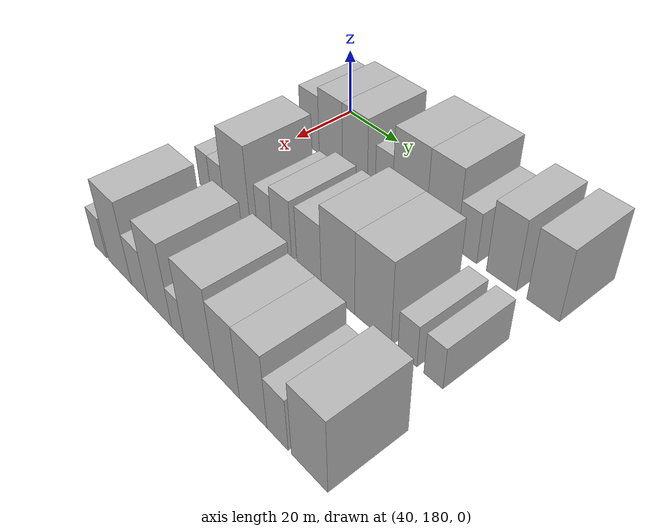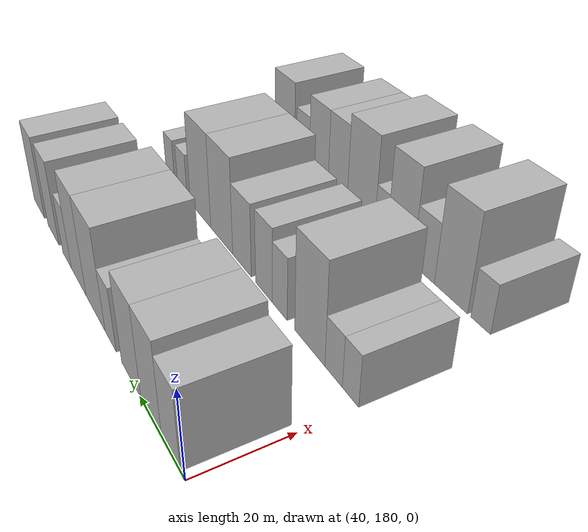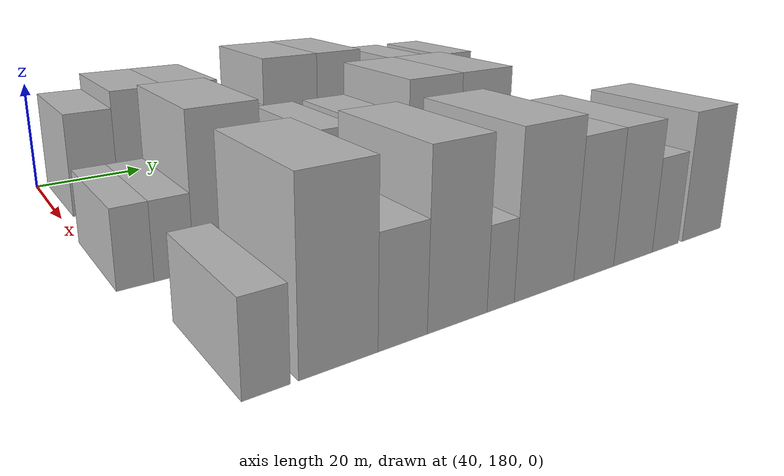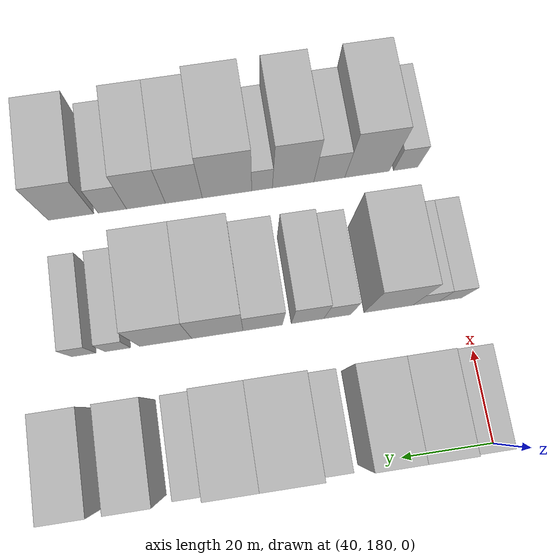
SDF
<sdf version="1.6">
 <world name="default">
  <model name="building_62">
   <static>1</static>
   <pose>50.0000 185.9678 0 0.000000 0.000000 0.000000</pose>
   <link name="link">
    <pose>0 0 9.00 0 0 0</pose>
    <collision name="collision"><geometry><box><size>20.0000 7.9779 18.0000</size></box></geometry></collision>
    <visual name="visual">
     <cast_shadows>0</cast_shadows>
     <geometry><box><size>20.0000 7.9779 18.0000</size></box></geometry>
     <material>
      <script>
       <uri>model://HANNAS_wall/materials/scripts</uri>
       <uri>model://HANNAS_wall/materials/textures</uri>
       <name>vrc/HANNAS_wall</name>
      </script>
     </material>
    </visual>
   </link>
  </model>
  <model name="building_63">
   <static>1</static>
   <pose>50.0000 194.7788 0 0.000000 0.000000 0.000000</pose>
   <link name="link">
    <pose>0 0 10.50 0 0 0</pose>
    <collision name="collision"><geometry><box><size>20.0000 9.6440 21.0000</size></box></geometry></collision>
    <visual name="visual">
     <cast_shadows>0</cast_shadows>
     <geometry><box><size>20.0000 9.6440 21.0000</size></box></geometry>
     <material>
      <script>
       <uri>model://HANNAS_wall/materials/scripts</uri>
       <uri>model://HANNAS_wall/materials/textures</uri>
       <name>vrc/HANNAS_wall</name>
      </script>
     </material>
    </visual>
   </link>
  </model>
  <model name="building_64">
   <static>1</static>
   <pose>50.0000 204.5723 0 0.000000 0.000000 0.000000</pose>
   <link name="link">
    <pose>0 0 10.50 0 0 0</pose>
    <collision name="collision"><geometry><box><size>20.0000 9.9431 21.0000</size></box></geometry></collision>
    <visual name="visual">
     <cast_shadows>0</cast_shadows>
     <geometry><box><size>20.0000 9.9431 21.0000</size></box></geometry>
     <material>
      <script>
       <uri>model://HANNAS_wall/materials/scripts</uri>
       <uri>model://HANNAS_wall/materials/textures</uri>
       <name>vrc/HANNAS_wall</name>
      </script>
     </material>
    </visual>
   </link>
  </model>
  <model name="building_65">
   <static>1</static>
   <pose>50.0000 215.7253 0 0.000000 0.000000 0.000000</pose>
   <link name="link">
    <pose>0 0 7.50 0 0 0</pose>
    <collision name="collision"><geometry><box><size>20.0000 6.3628 15.0000</size></box></geometry></collision>
    <visual name="visual">
     <cast_shadows>0</cast_shadows>
     <geometry><box><size>20.0000 6.3628 15.0000</size></box></geometry>
     <material>
      <script>
       <uri>model://HANNAS_wall/materials/scripts</uri>
       <uri>model://HANNAS_wall/materials/textures</uri>
       <name>vrc/HANNAS_wall</name>
      </script>
     </material>
    </visual>
   </link>
  </model>
  <model name="building_66">
   <static>1</static>
   <pose>50.0000 224.8831 0 0.000000 0.000000 0.000000</pose>
   <link name="link">
    <pose>0 0 12.00 0 0 0</pose>
    <collision name="collision"><geometry><box><size>20.0000 11.9528 24.0000</size></box></geometry></collision>
    <visual name="visual">
     <cast_shadows>0</cast_shadows>
     <geometry><box><size>20.0000 11.9528 24.0000</size></box></geometry>
     <material>
      <script>
       <uri>model://HANNAS_wall/materials/scripts</uri>
       <uri>model://HANNAS_wall/materials/textures</uri>
       <name>vrc/HANNAS_wall</name>
      </script>
     </material>
    </visual>
   </link>
  </model>
  <model name="building_67">
   <static>1</static>
   <pose>50.0000 236.0277 0 0.000000 0.000000 0.000000</pose>
   <link name="link">
    <pose>0 0 12.00 0 0 0</pose>
    <collision name="collision"><geometry><box><size>20.0000 10.3364 24.0000</size></box></geometry></collision>
    <visual name="visual">
     <cast_shadows>0</cast_shadows>
     <geometry><box><size>20.0000 10.3364 24.0000</size></box></geometry>
     <material>
      <script>
       <uri>model://HANNAS_wall/materials/scripts</uri>
       <uri>model://HANNAS_wall/materials/textures</uri>
       <name>vrc/HANNAS_wall</name>
      </script>
     </material>
    </visual>
   </link>
  </model>
  <model name="building_68">
   <static>1</static>
   <pose>50.0000 244.3771 0 0.000000 0.000000 0.000000</pose>
   <link name="link">
    <pose>0 0 7.50 0 0 0</pose>
    <collision name="collision"><geometry><box><size>20.0000 6.3625 15.0000</size></box></geometry></collision>
    <visual name="visual">
     <cast_shadows>0</cast_shadows>
     <geometry><box><size>20.0000 6.3625 15.0000</size></box></geometry>
     <material>
      <script>
       <uri>model://HANNAS_wall/materials/scripts</uri>
       <uri>model://HANNAS_wall/materials/textures</uri>
       <name>vrc/HANNAS_wall</name>
      </script>
     </material>
    </visual>
   </link>
  </model>
  <model name="building_69">
   <static>1</static>
   <pose>50.0000 255.0346 0 0.000000 0.000000 0.000000</pose>
   <link name="link">
    <pose>0 0 10.50 0 0 0</pose>
    <collision name="collision"><geometry><box><size>20.0000 8.9523 21.0000</size></box></geometry></collision>
    <visual name="visual">
     <cast_shadows>0</cast_shadows>
     <geometry><box><size>20.0000 8.9523 21.0000</size></box></geometry>
     <material>
      <script>
       <uri>model://HANNAS_wall/materials/scripts</uri>
       <uri>model://HANNAS_wall/materials/textures</uri>
       <name>vrc/HANNAS_wall</name>
      </script>
     </material>
    </visual>
   </link>
  </model>
  <model name="building_70">
   <static>1</static>
   <pose>50.0000 267.0663 0 0.000000 0.000000 0.000000</pose>
   <link name="link">
    <pose>0 0 10.50 0 0 0</pose>
    <collision name="collision"><geometry><box><size>20.0000 9.1111 21.0000</size></box></geometry></collision>
    <visual name="visual">
     <cast_shadows>0</cast_shadows>
     <geometry><box><size>20.0000 9.1111 21.0000</size></box></geometry>
     <material>
      <script>
       <uri>model://HANNAS_wall/materials/scripts</uri>
       <uri>model://HANNAS_wall/materials/textures</uri>
       <name>vrc/HANNAS_wall</name>
      </script>
     </material>
    </visual>
   </link>
  </model>
  <model name="building_138">
   <static>1</static>
   <pose>82.0000 182.5550 0 0.000000 0.000000 0.000000</pose>
   <link name="link">
    <pose>0 0 6.00 0 0 0</pose>
    <collision name="collision"><geometry><box><size>20.0000 5.2602 12.0000</size></box></geometry></collision>
    <visual name="visual">
     <cast_shadows>0</cast_shadows>
     <geometry><box><size>20.0000 5.2602 12.0000</size></box></geometry>
     <material>
      <script>
       <uri>model://HANNAS_wall/materials/scripts</uri>
       <uri>model://HANNAS_wall/materials/textures</uri>
       <name>vrc/HANNAS_wall</name>
      </script>
     </material>
    </visual>
   </link>
  </model>
  <model name="building_139">
   <static>1</static>
   <pose>82.0000 188.1379 0 0.000000 0.000000 0.000000</pose>
   <link name="link">
    <pose>0 0 6.00 0 0 0</pose>
    <collision name="collision"><geometry><box><size>20.0000 5.9056 12.0000</size></box></geometry></collision>
    <visual name="visual">
     <cast_shadows>0</cast_shadows>
     <geometry><box><size>20.0000 5.9056 12.0000</size></box></geometry>
     <material>
      <script>
       <uri>model://HANNAS_wall/materials/scripts</uri>
       <uri>model://HANNAS_wall/materials/textures</uri>
       <name>vrc/HANNAS_wall</name>
      </script>
     </material>
    </visual>
   </link>
  </model>
  <model name="building_140">
   <static>1</static>
   <pose>82.0000 196.6702 0 0.000000 0.000000 0.000000</pose>
   <link name="link">
    <pose>0 0 12.00 0 0 0</pose>
    <collision name="collision"><geometry><box><size>20.0000 11.1590 24.0000</size></box></geometry></collision>
    <visual name="visual">
     <cast_shadows>0</cast_shadows>
     <geometry><box><size>20.0000 11.1590 24.0000</size></box></geometry>
     <material>
      <script>
       <uri>model://HANNAS_wall/materials/scripts</uri>
       <uri>model://HANNAS_wall/materials/textures</uri>
       <name>vrc/HANNAS_wall</name>
      </script>
     </material>
    </visual>
   </link>
  </model>
  <model name="building_141">
   <static>1</static>
   <pose>82.0000 208.3032 0 0.000000 0.000000 0.000000</pose>
   <link name="link">
    <pose>0 0 7.50 0 0 0</pose>
    <collision name="collision"><geometry><box><size>20.0000 6.1069 15.0000</size></box></geometry></collision>
    <visual name="visual">
     <cast_shadows>0</cast_shadows>
     <geometry><box><size>20.0000 6.1069 15.0000</size></box></geometry>
     <material>
      <script>
       <uri>model://HANNAS_wall/materials/scripts</uri>
       <uri>model://HANNAS_wall/materials/textures</uri>
       <name>vrc/HANNAS_wall</name>
      </script>
     </material>
    </visual>
   </link>
  </model>
  <model name="building_142">
   <static>1</static>
   <pose>82.0000 215.0246 0 0.000000 0.000000 0.000000</pose>
   <link name="link">
    <pose>0 0 9.00 0 0 0</pose>
    <collision name="collision"><geometry><box><size>20.0000 7.3360 18.0000</size></box></geometry></collision>
    <visual name="visual">
     <cast_shadows>0</cast_shadows>
     <geometry><box><size>20.0000 7.3360 18.0000</size></box></geometry>
     <material>
      <script>
       <uri>model://HANNAS_wall/materials/scripts</uri>
       <uri>model://HANNAS_wall/materials/textures</uri>
       <name>vrc/HANNAS_wall</name>
      </script>
     </material>
    </visual>
   </link>
  </model>
  <model name="building_143">
   <static>1</static>
   <pose>82.0000 225.1126 0 0.000000 0.000000 0.000000</pose>
   <link name="link">
    <pose>0 0 9.00 0 0 0</pose>
    <collision name="collision"><geometry><box><size>20.0000 8.8400 18.0000</size></box></geometry></collision>
    <visual name="visual">
     <cast_shadows>0</cast_shadows>
     <geometry><box><size>20.0000 8.8400 18.0000</size></box></geometry>
     <material>
      <script>
       <uri>model://HANNAS_wall/materials/scripts</uri>
       <uri>model://HANNAS_wall/materials/textures</uri>
       <name>vrc/HANNAS_wall</name>
      </script>
     </material>
    </visual>
   </link>
  </model>
  <model name="building_144">
   <static>1</static>
   <pose>82.0000 235.2443 0 0.000000 0.000000 0.000000</pose>
   <link name="link">
    <pose>0 0 12.00 0 0 0</pose>
    <collision name="collision"><geometry><box><size>20.0000 11.4233 24.0000</size></box></geometry></collision>
    <visual name="visual">
     <cast_shadows>0</cast_shadows>
     <geometry><box><size>20.0000 11.4233 24.0000</size></box></geometry>
     <material>
      <script>
       <uri>model://HANNAS_wall/materials/scripts</uri>
       <uri>model://HANNAS_wall/materials/textures</uri>
       <name>vrc/HANNAS_wall</name>
      </script>
     </material>
    </visual>
   </link>
  </model>
  <model name="building_145">
   <static>1</static>
   <pose>82.0000 246.7491 0 0.000000 0.000000 0.000000</pose>
   <link name="link">
    <pose>0 0 12.00 0 0 0</pose>
    <collision name="collision"><geometry><box><size>20.0000 11.5862 24.0000</size></box></geometry></collision>
    <visual name="visual">
     <cast_shadows>0</cast_shadows>
     <geometry><box><size>20.0000 11.5862 24.0000</size></box></geometry>
     <material>
      <script>
       <uri>model://HANNAS_wall/materials/scripts</uri>
       <uri>model://HANNAS_wall/materials/textures</uri>
       <name>vrc/HANNAS_wall</name>
      </script>
     </material>
    </visual>
   </link>
  </model>
  <model name="building_146">
   <static>1</static>
   <pose>82.0000 257.3746 0 0.000000 0.000000 0.000000</pose>
   <link name="link">
    <pose>0 0 6.00 0 0 0</pose>
    <collision name="collision"><geometry><box><size>20.0000 5.6648 12.0000</size></box></geometry></collision>
    <visual name="visual">
     <cast_shadows>0</cast_shadows>
     <geometry><box><size>20.0000 5.6648 12.0000</size></box></geometry>
     <material>
      <script>
       <uri>model://HANNAS_wall/materials/scripts</uri>
       <uri>model://HANNAS_wall/materials/textures</uri>
       <name>vrc/HANNAS_wall</name>
      </script>
     </material>
    </visual>
   </link>
  </model>
  <model name="building_147">
   <static>1</static>
   <pose>82.0000 264.8979 0 0.000000 0.000000 0.000000</pose>
   <link name="link">
    <pose>0 0 6.00 0 0 0</pose>
    <collision name="collision"><geometry><box><size>20.0000 5.3818 12.0000</size></box></geometry></collision>
    <visual name="visual">
     <cast_shadows>0</cast_shadows>
     <geometry><box><size>20.0000 5.3818 12.0000</size></box></geometry>
     <material>
      <script>
       <uri>model://HANNAS_wall/materials/scripts</uri>
       <uri>model://HANNAS_wall/materials/textures</uri>
       <name>vrc/HANNAS_wall</name>
      </script>
     </material>
    </visual>
   </link>
  </model>
  <model name="building_213">
   <static>1</static>
   <pose>114.0000 186.3733 0 0.000000 0.000000 0.000000</pose>
   <link name="link">
    <pose>0 0 6.00 0 0 0</pose>
    <collision name="collision"><geometry><box><size>20.0000 5.7891 12.0000</size></box></geometry></collision>
    <visual name="visual">
     <cast_shadows>0</cast_shadows>
     <geometry><box><size>20.0000 5.7891 12.0000</size></box></geometry>
     <material>
      <script>
       <uri>model://HANNAS_wall/materials/scripts</uri>
       <uri>model://HANNAS_wall/materials/textures</uri>
       <name>vrc/HANNAS_wall</name>
      </script>
     </material>
    </visual>
   </link>
  </model>
  <model name="building_214">
   <static>1</static>
   <pose>114.0000 195.5550 0 0.000000 0.000000 0.000000</pose>
   <link name="link">
    <pose>0 0 12.00 0 0 0</pose>
    <collision name="collision"><geometry><box><size>20.0000 10.5743 24.0000</size></box></geometry></collision>
    <visual name="visual">
     <cast_shadows>0</cast_shadows>
     <geometry><box><size>20.0000 10.5743 24.0000</size></box></geometry>
     <material>
      <script>
       <uri>model://HANNAS_wall/materials/scripts</uri>
       <uri>model://HANNAS_wall/materials/textures</uri>
       <name>vrc/HANNAS_wall</name>
      </script>
     </material>
    </visual>
   </link>
  </model>
  <model name="building_215">
   <static>1</static>
   <pose>114.0000 204.4991 0 0.000000 0.000000 0.000000</pose>
   <link name="link">
    <pose>0 0 7.50 0 0 0</pose>
    <collision name="collision"><geometry><box><size>20.0000 7.3139 15.0000</size></box></geometry></collision>
    <visual name="visual">
     <cast_shadows>0</cast_shadows>
     <geometry><box><size>20.0000 7.3139 15.0000</size></box></geometry>
     <material>
      <script>
       <uri>model://HANNAS_wall/materials/scripts</uri>
       <uri>model://HANNAS_wall/materials/textures</uri>
       <name>vrc/HANNAS_wall</name>
      </script>
     </material>
    </visual>
   </link>
  </model>
  <model name="building_216">
   <static>1</static>
   <pose>114.0000 213.0432 0 0.000000 0.000000 0.000000</pose>
   <link name="link">
    <pose>0 0 12.00 0 0 0</pose>
    <collision name="collision"><geometry><box><size>20.0000 9.7744 24.0000</size></box></geometry></collision>
    <visual name="visual">
     <cast_shadows>0</cast_shadows>
     <geometry><box><size>20.0000 9.7744 24.0000</size></box></geometry>
     <material>
      <script>
       <uri>model://HANNAS_wall/materials/scripts</uri>
       <uri>model://HANNAS_wall/materials/textures</uri>
       <name>vrc/HANNAS_wall</name>
      </script>
     </material>
    </visual>
   </link>
  </model>
  <model name="building_217">
   <static>1</static>
   <pose>114.0000 220.3568 0 0.000000 0.000000 0.000000</pose>
   <link name="link">
    <pose>0 0 6.00 0 0 0</pose>
    <collision name="collision"><geometry><box><size>20.0000 4.8528 12.0000</size></box></geometry></collision>
    <visual name="visual">
     <cast_shadows>0</cast_shadows>
     <geometry><box><size>20.0000 4.8528 12.0000</size></box></geometry>
     <material>
      <script>
       <uri>model://HANNAS_wall/materials/scripts</uri>
       <uri>model://HANNAS_wall/materials/textures</uri>
       <name>vrc/HANNAS_wall</name>
      </script>
     </material>
    </visual>
   </link>
  </model>
  <model name="building_218">
   <static>1</static>
   <pose>114.0000 228.5602 0 0.000000 0.000000 0.000000</pose>
   <link name="link">
    <pose>0 0 12.00 0 0 0</pose>
    <collision name="collision"><geometry><box><size>20.0000 11.5541 24.0000</size></box></geometry></collision>
    <visual name="visual">
     <cast_shadows>0</cast_shadows>
     <geometry><box><size>20.0000 11.5541 24.0000</size></box></geometry>
     <material>
      <script>
       <uri>model://HANNAS_wall/materials/scripts</uri>
       <uri>model://HANNAS_wall/materials/textures</uri>
       <name>vrc/HANNAS_wall</name>
      </script>
     </material>
    </visual>
   </link>
  </model>
  <model name="building_219">
   <static>1</static>
   <pose>114.0000 238.6277 0 0.000000 0.000000 0.000000</pose>
   <link name="link">
    <pose>0 0 10.50 0 0 0</pose>
    <collision name="collision"><geometry><box><size>20.0000 8.5809 21.0000</size></box></geometry></collision>
    <visual name="visual">
     <cast_shadows>0</cast_shadows>
     <geometry><box><size>20.0000 8.5809 21.0000</size></box></geometry>
     <material>
      <script>
       <uri>model://HANNAS_wall/materials/scripts</uri>
       <uri>model://HANNAS_wall/materials/textures</uri>
       <name>vrc/HANNAS_wall</name>
      </script>
     </material>
    </visual>
   </link>
  </model>
  <model name="building_220">
   <static>1</static>
   <pose>114.0000 247.4484 0 0.000000 0.000000 0.000000</pose>
   <link name="link">
    <pose>0 0 10.50 0 0 0</pose>
    <collision name="collision"><geometry><box><size>20.0000 9.0604 21.0000</size></box></geometry></collision>
    <visual name="visual">
     <cast_shadows>0</cast_shadows>
     <geometry><box><size>20.0000 9.0604 21.0000</size></box></geometry>
     <material>
      <script>
       <uri>model://HANNAS_wall/materials/scripts</uri>
       <uri>model://HANNAS_wall/materials/textures</uri>
       <name>vrc/HANNAS_wall</name>
      </script>
     </material>
    </visual>
   </link>
  </model>
  <model name="building_221">
   <static>1</static>
   <pose>114.0000 255.2584 0 0.000000 0.000000 0.000000</pose>
   <link name="link">
    <pose>0 0 7.50 0 0 0</pose>
    <collision name="collision"><geometry><box><size>20.0000 6.5596 15.0000</size></box></geometry></collision>
    <visual name="visual">
     <cast_shadows>0</cast_shadows>
     <geometry><box><size>20.0000 6.5596 15.0000</size></box></geometry>
     <material>
      <script>
       <uri>model://HANNAS_wall/materials/scripts</uri>
       <uri>model://HANNAS_wall/materials/textures</uri>
       <name>vrc/HANNAS_wall</name>
      </script>
     </material>
    </visual>
   </link>
  </model>
  <model name="building_222">
   <static>1</static>
   <pose>114.0000 264.7876 0 0.000000 0.000000 0.000000</pose>
   <link name="link">
    <pose>0 0 10.50 0 0 0</pose>
    <collision name="collision"><geometry><box><size>20.0000 10.4988 21.0000</size></box></geometry></collision>
    <visual name="visual">
     <cast_shadows>0</cast_shadows>
     <geometry><box><size>20.0000 10.4988 21.0000</size></box></geometry>
     <material>
      <script>
       <uri>model://HANNAS_wall/materials/scripts</uri>
       <uri>model://HANNAS_wall/materials/textures</uri>
       <name>vrc/HANNAS_wall</name>
      </script>
     </material>
    </visual>
   </link>
  </model>
 </world>
</sdf>
